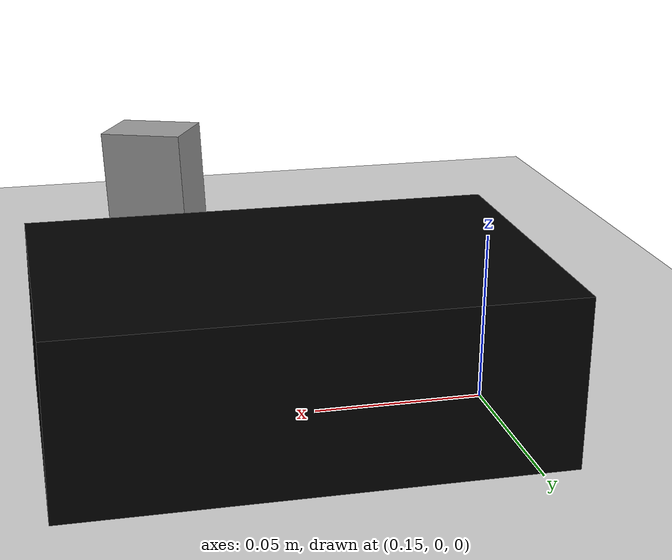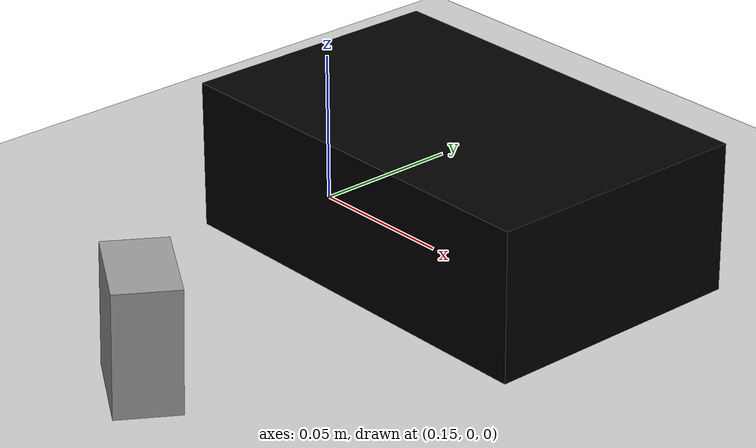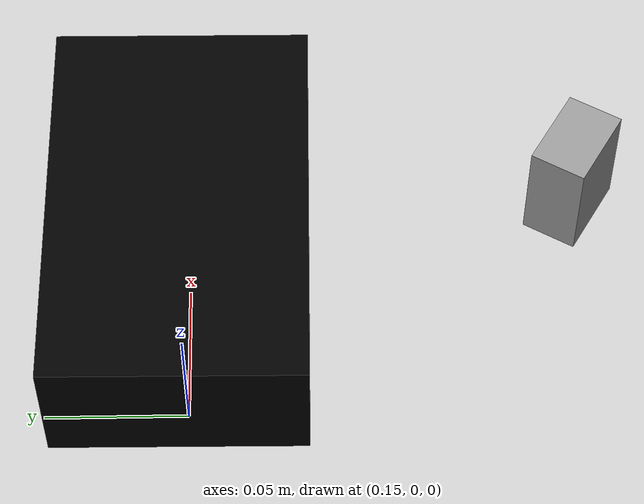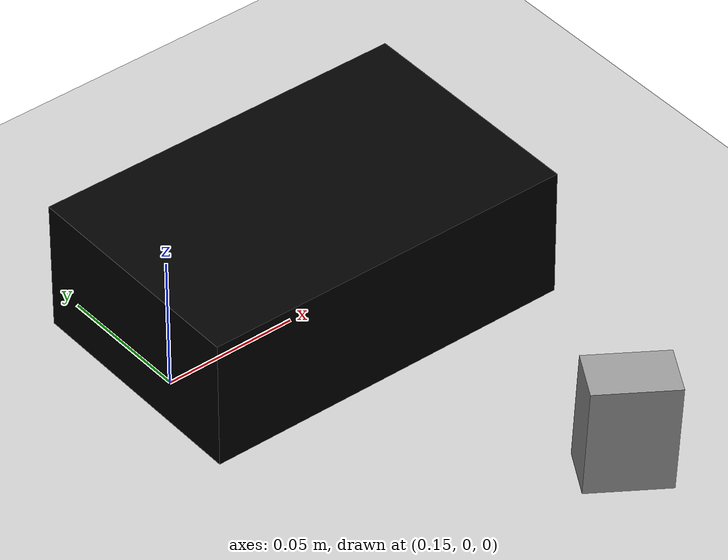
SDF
<sdf version="1.7">
 <world name="default">
  <light name="sun" type="directional">
   <pose>0 0 10 0 -0 0</pose>
   <diffuse>0.8 0.8 0.8 1</diffuse>
   <specular>0.2 0.2 0.2 1</specular>
   <attenuation>
    <range>1000</range>
    <constant>0.9</constant>
    <linear>0.01</linear>
    <quadratic>0.001</quadratic>
   </attenuation>
   <direction>-0.5 0.1 -0.9</direction>
   <spot><inner_angle>0</inner_angle><outer_angle>0</outer_angle><falloff>0</falloff></spot>
  </light>
  <model name="ground_plane">
   <static>1</static>
   <link name="link">
    <collision name="collision">
     <geometry><plane><normal>0 0 1</normal><size>100 100</size></plane></geometry>
     <surface>
      <contact><collide_bitmask>65535</collide_bitmask></contact>
      <friction><ode><mu>100</mu><mu2>50</mu2></ode></friction>
     </surface>
    </collision>
    <visual name="visual">
     <cast_shadows>0</cast_shadows>
     <geometry><plane><normal>0 0 1</normal><size>100 100</size></plane></geometry>
     <material>
      <script><uri>file://media/materials/scripts/gazebo.material</uri><name>Gazebo/Grey</name></script>
     </material>
    </visual>
   </link>
  </model>
  <gravity>0 0 -9.8</gravity>
  <magnetic_field>6e-06 2.3e-05 -4.2e-05</magnetic_field>
  <atmosphere type="adiabatic"/>
  <physics type="ode">
   <max_step_size>0.001</max_step_size>
   <real_time_factor>1</real_time_factor>
   <real_time_update_rate>1000</real_time_update_rate>
  </physics>
  <scene><ambient>0.4 0.4 0.4 1</ambient><background>0.7 0.7 0.7 1</background><shadows>1</shadows></scene>
  <spherical_coordinates>
   <surface_model>EARTH_WGS84</surface_model>
   <latitude_deg>0</latitude_deg>
   <longitude_deg>0</longitude_deg>
   <elevation>0</elevation>
   <heading_deg>0</heading_deg>
  </spherical_coordinates>
  <model name="RealSense_box">
   <link name="link">
    <inertial>
     <mass>1</mass>
     <inertia>
      <ixx>0.00088333</ixx>
      <ixy>0</ixy>
      <ixz>0</ixz>
      <iyy>0.00184167</iyy>
      <iyz>0</iyz>
      <izz>0.00230833</izz>
     </inertia>
    </inertial>
    <visual name="visual">
     <geometry><box><size>0.14 0.09 0.05</size></box></geometry>
     <material>
      <shader type="pixel"><normal_map>__default__</normal_map></shader>
      <script>
       <name>ModelPreview_1::link::visual_MATERIAL_ModelPreview_1::link::visual_MATERIAL_</name>
       <uri>__default__</uri>
      </script>
      <ambient>0 0 0 1</ambient>
      <diffuse>0 0 0 1</diffuse>
      <specular>0 0 0 1</specular>
      <emissive>0 0 0 1</emissive>
     </material>
    </visual>
    <collision name="collision">
     <geometry><box><size>0.14 0.09 0.05</size></box></geometry>
     <surface>
      <friction>
       <ode><mu>1</mu><mu2>1</mu2><fdir1>0 0 0</fdir1><slip1>0</slip1><slip2>0</slip2></ode>
       <torsional>
        <coefficient>1</coefficient>
        <patch_radius>0</patch_radius>
        <surface_radius>0</surface_radius>
        <use_patch_radius>1</use_patch_radius>
        <ode><slip>0</slip></ode>
       </torsional>
      </friction>
      <bounce><restitution_coefficient>0</restitution_coefficient><threshold>1e+06</threshold></bounce>
      <contact>
       <collide_without_contact>0</collide_without_contact>
       <collide_without_contact_bitmask>1</collide_without_contact_bitmask>
       <collide_bitmask>1</collide_bitmask>
       <ode>
        <soft_cfm>0</soft_cfm>
        <soft_erp>0.2</soft_erp>
        <kp>1e+07</kp>
        <kd>1</kd>
        <max_vel>0.1</max_vel>
        <min_depth>0.001</min_depth>
       </ode>
       <bullet>
        <split_impulse>1</split_impulse>
        <split_impulse_penetration_threshold>-0.01</split_impulse_penetration_threshold>
        <soft_cfm>0</soft_cfm>
        <soft_erp>0.2</soft_erp>
        <kp>1e+07</kp>
        <kd>1</kd>
       </bullet>
      </contact>
     </surface>
    </collision>
   </link>
   <static>0</static>
   <pose>0.208428 0.0028 0.024 0 -0 -0.007276</pose>
  </model>
  <model name="object_1">
   <link name="link">
    <inertial>
     <mass>0.01</mass>
     <inertia><ixx>0.001</ixx><ixy>0</ixy><ixz>0</ixz><iyy>0.001</iyy><iyz>0</iyz><izz>0.001</izz></inertia>
    </inertial>
    <pose>0.232022 0.184118 0.050572 0.043945 -0.074296 1.03598</pose>
    <visual name="visual">
     <geometry><box><size>0.02 0.03 0.04</size></box></geometry>
     <material>
      <script><name>Gazebo/Grey</name><uri>file://media/materials/scripts/gazebo.material</uri></script>
      <shader type="pixel"><normal_map>__default__</normal_map></shader>
      <ambient>0.3 0.3 0.3 1</ambient>
      <diffuse>0.7 0.7 0.7 1</diffuse>
      <specular>0.01 0.01 0.01 1</specular>
      <emissive>0 0 0 1</emissive>
     </material>
    </visual>
    <collision name="collision">
     <geometry><box><size>0.02 0.03 0.04</size></box></geometry>
     <surface>
      <friction>
       <ode><mu>1</mu><mu2>1</mu2><fdir1>0 0 0</fdir1><slip1>0</slip1><slip2>0</slip2></ode>
       <torsional>
        <coefficient>1</coefficient>
        <patch_radius>0</patch_radius>
        <surface_radius>0</surface_radius>
        <use_patch_radius>1</use_patch_radius>
        <ode><slip>0</slip></ode>
       </torsional>
      </friction>
      <bounce><restitution_coefficient>0</restitution_coefficient><threshold>1e+06</threshold></bounce>
      <contact>
       <collide_without_contact>0</collide_without_contact>
       <collide_without_contact_bitmask>1</collide_without_contact_bitmask>
       <collide_bitmask>1</collide_bitmask>
       <ode>
        <soft_cfm>0</soft_cfm>
        <soft_erp>0.2</soft_erp>
        <kp>1e+13</kp>
        <kd>1</kd>
        <max_vel>0.01</max_vel>
        <min_depth>0</min_depth>
       </ode>
       <bullet>
        <split_impulse>1</split_impulse>
        <split_impulse_penetration_threshold>-0.01</split_impulse_penetration_threshold>
        <soft_cfm>0</soft_cfm>
        <soft_erp>0.2</soft_erp>
        <kp>1e+13</kp>
        <kd>1</kd>
       </bullet>
      </contact>
     </surface>
    </collision>
   </link>
   <static>0</static>
   <pose>-0.00534 -0.322584 0.00849 -0.081991 0.051975 -0.002023</pose>
  </model>
 </world>
</sdf>
